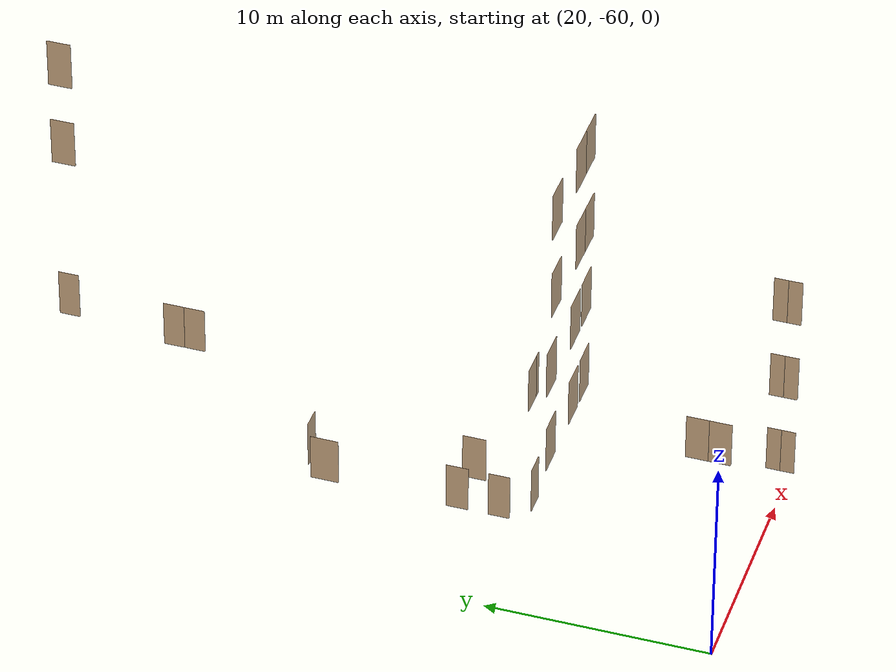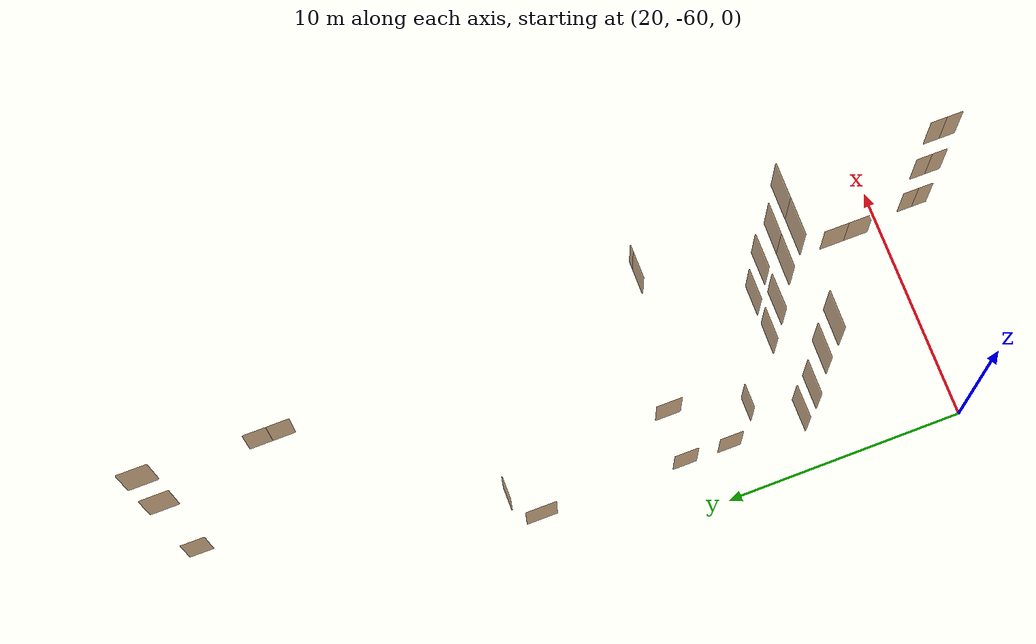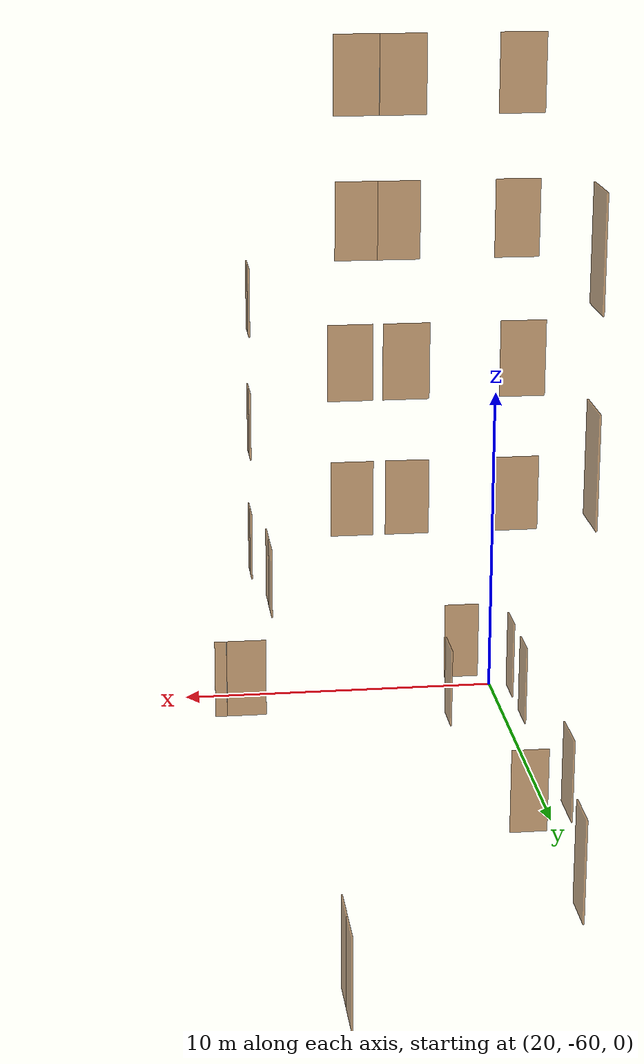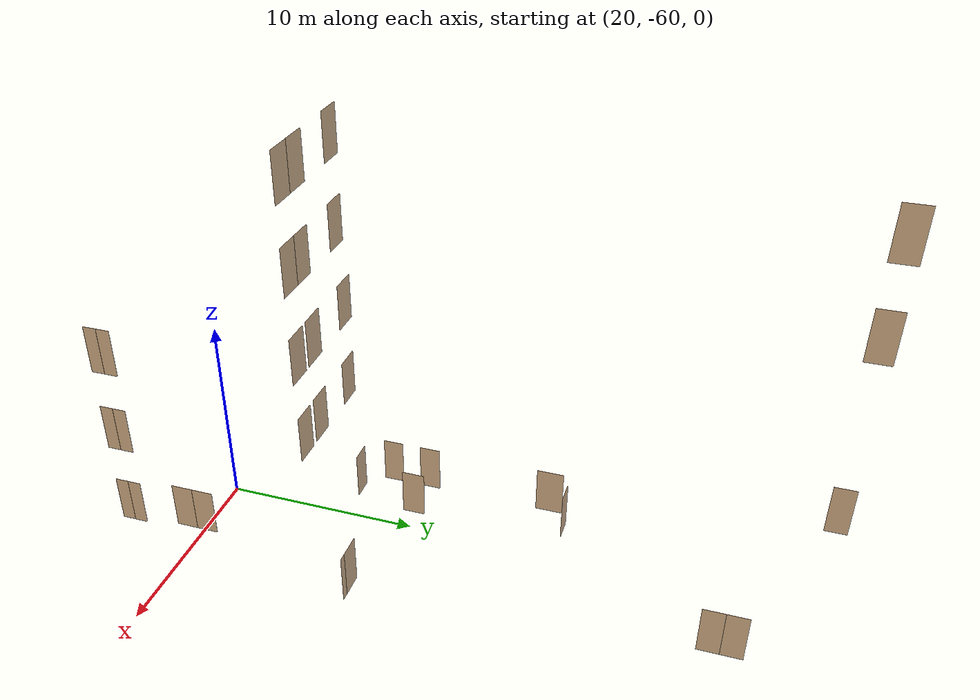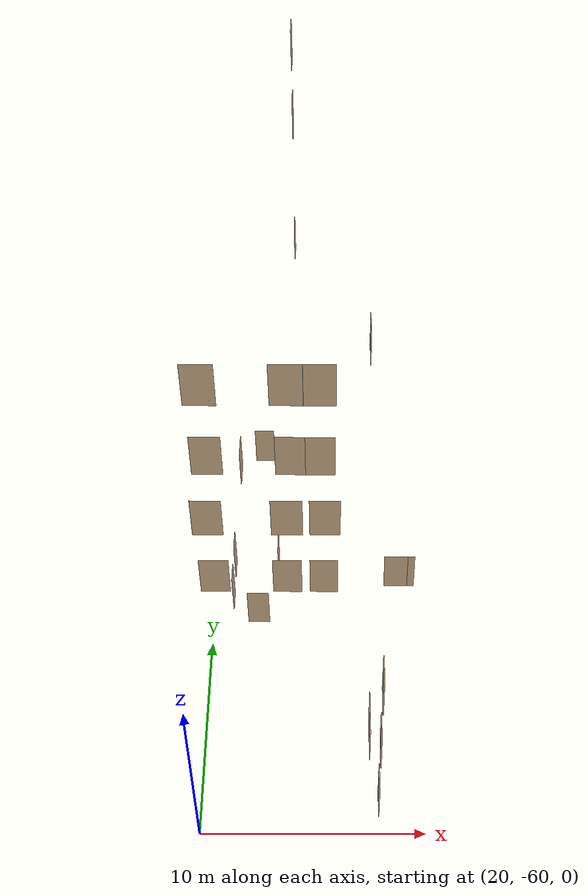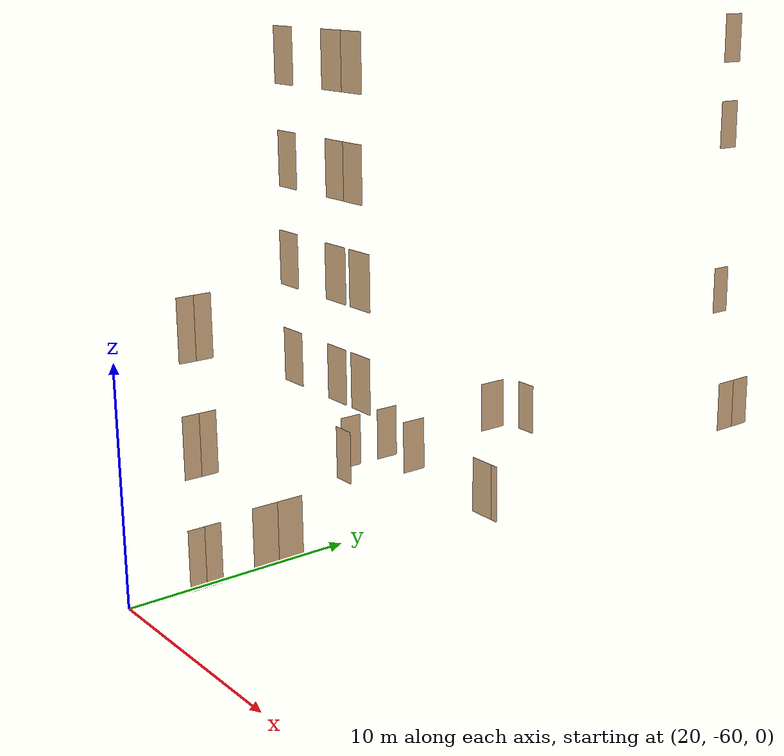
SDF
<sdf version="1.7">
 <world name="sim_world">
  <model name="0null19">
   <pose>27.81230631370644 -60.652111413956575 4.0 0 0 1.5707963267948966</pose>
   <link name="right">
    <pose>0.3098140611581979 0 1.11 0 0 0</pose>
    <visual name="right_visual">
     <geometry><box><size>0.6096281223163957 0.03 2.2</size></box></geometry>
     <material>
      <ambient>0.5 0.25 0 0.6</ambient>
      <diffuse>0.5 0.25 0 0.6</diffuse>
      <pbr><metal><metalness>0.0</metalness></metal></pbr>
     </material>
    </visual>
    <collision name="right_collision">
     <geometry><box><size>0.6096281223163957 0.03 2.2</size></box></geometry>
     <surface><contact><collide_bitmask>0x02</collide_bitmask></contact></surface>
    </collision>
    <inertial>
     <mass>50.0</mass>
     <inertia><ixx>20.17041666666667</ixx><iyy>21.71519353132923</iyy><izz>1.55227686466256</izz></inertia>
    </inertial>
   </link>
   <joint name="right_joint" type="prismatic">
    <parent>world</parent>
    <child>right</child>
    <axis>
     <xyz>1 0 0</xyz>
     <limit><lower>0.0</lower><upper>0.6196281223163957</upper><effort>500.0</effort></limit>
    </axis>
   </joint>
   <link name="left">
    <pose>-0.3098140611581979 0 1.11 0 0 0</pose>
    <visual name="left_visual">
     <geometry><box><size>0.6096281223163957 0.03 2.2</size></box></geometry>
     <material>
      <ambient>0.5 0.25 0 0.6</ambient>
      <diffuse>0.5 0.25 0 0.6</diffuse>
      <pbr><metal><metalness>0.0</metalness></metal></pbr>
     </material>
    </visual>
    <collision name="left_collision">
     <geometry><box><size>0.6096281223163957 0.03 2.2</size></box></geometry>
     <surface><contact><collide_bitmask>0x02</collide_bitmask></contact></surface>
    </collision>
    <inertial>
     <mass>50.0</mass>
     <inertia><ixx>20.17041666666667</ixx><iyy>21.71519353132923</iyy><izz>1.55227686466256</izz></inertia>
    </inertial>
   </link>
   <joint name="left_joint" type="prismatic">
    <parent>world</parent>
    <child>left</child>
    <axis>
     <xyz>1 0 0</xyz>
     <limit><lower>-0.6196281223163957</lower><upper>0.0</upper><effort>500.0</effort></limit>
    </axis>
   </joint>
   <plugin name="register_component" filename="libregister_component.so">
    <component name="Door">
     <v_max_door>0.2</v_max_door>
     <a_max_door>0.2</a_max_door>
     <a_nom_door>0.08</a_nom_door>
     <dx_min_door>0.001</dx_min_door>
     <f_max_door>100.0</f_max_door>
     <ros_interface>true</ros_interface>
     <door name="0null19" type="DoubleSlidingDoor" left_joint_name="left_joint" right_joint_name="right_joint"/>
    </component>
   </plugin>
  </model>
  <model name="0null34">
   <pose>27.865829070679144 -33.85503864391589 4.0 0 0 1.5718024222120746</pose>
   <link name="right">
    <pose>0.47316418675498717 0 1.11 0 0 0</pose>
    <visual name="right_visual">
     <geometry><box><size>0.9363283735099743 0.03 2.2</size></box></geometry>
     <material>
      <ambient>0.5 0.25 0 0.6</ambient>
      <diffuse>0.5 0.25 0 0.6</diffuse>
      <pbr><metal><metalness>0.0</metalness></metal></pbr>
     </material>
    </visual>
    <collision name="right_collision">
     <geometry><box><size>0.9363283735099743 0.03 2.2</size></box></geometry>
     <surface><contact><collide_bitmask>0x02</collide_bitmask></contact></surface>
    </collision>
    <inertial>
     <mass>50.0</mass>
     <inertia><ixx>20.17041666666667</ixx><iyy>23.819628429332646</iyy><izz>3.6567117626659758</izz></inertia>
    </inertial>
   </link>
   <joint name="right_joint" type="revolute">
    <parent>world</parent>
    <child>right</child>
    <axis><xyz>0 0 1</xyz><limit><lower>0</lower><upper>1.57</upper></limit></axis>
    <pose>0.47316418675498717 0 0 0 0 0</pose>
   </joint>
   <link name="left">
    <pose>-0.47316418675498717 0 1.11 0 0 0</pose>
    <visual name="left_visual">
     <geometry><box><size>0.9363283735099743 0.03 2.2</size></box></geometry>
     <material>
      <ambient>0.5 0.25 0 0.6</ambient>
      <diffuse>0.5 0.25 0 0.6</diffuse>
      <pbr><metal><metalness>0.0</metalness></metal></pbr>
     </material>
    </visual>
    <collision name="left_collision">
     <geometry><box><size>0.9363283735099743 0.03 2.2</size></box></geometry>
     <surface><contact><collide_bitmask>0x02</collide_bitmask></contact></surface>
    </collision>
    <inertial>
     <mass>50.0</mass>
     <inertia><ixx>20.17041666666667</ixx><iyy>23.819628429332646</iyy><izz>3.6567117626659758</izz></inertia>
    </inertial>
   </link>
   <joint name="left_joint" type="revolute">
    <parent>world</parent>
    <child>left</child>
    <axis><xyz>0 0 1</xyz><limit><lower>-1.57</lower><upper>0</upper></limit></axis>
    <pose>-0.47316418675498717 0 0 0 0 0</pose>
   </joint>
   <plugin name="register_component" filename="libregister_component.so">
    <component name="Door">
     <v_max_door>0.5</v_max_door>
     <a_max_door>0.3</a_max_door>
     <a_nom_door>0.15</a_nom_door>
     <dx_min_door>0.01</dx_min_door>
     <f_max_door>500.0</f_max_door>
     <ros_interface>true</ros_interface>
     <door name="0null34" type="DoubleSwingDoor" left_joint_name="left_joint" right_joint_name="right_joint"/>
    </component>
   </plugin>
  </model>
  <model name="0null35">
   <pose>22.43615353022438 -41.5524773177015 4.0 0 0 0.0</pose>
   <link name="right">
    <pose>0 0 1.11 0 0 0</pose>
    <visual name="right_visual">
     <geometry><box><size>0.9322768173841618 0.03 2.2</size></box></geometry>
     <material>
      <ambient>0.5 0.25 0 0.6</ambient>
      <diffuse>0.5 0.25 0 0.6</diffuse>
      <pbr><metal><metalness>0.0</metalness></metal></pbr>
     </material>
    </visual>
    <collision name="right_collision">
     <geometry><box><size>0.9322768173841618 0.03 2.2</size></box></geometry>
     <surface><contact><collide_bitmask>0x02</collide_bitmask></contact></surface>
    </collision>
    <inertial>
     <mass>50.0</mass>
     <inertia><ixx>20.17041666666667</ixx><iyy>23.788083600966427</iyy><izz>3.6251669342997577</izz></inertia>
    </inertial>
   </link>
   <joint name="right_joint" type="revolute">
    <parent>world</parent>
    <child>right</child>
    <axis><xyz>0 0 1</xyz><limit><lower>0</lower><upper>1.57</upper></limit></axis>
    <pose>0.4711384086920809 0 0 0 0 0</pose>
   </joint>
   <plugin name="register_component" filename="libregister_component.so">
    <component name="Door">
     <v_max_door>0.5</v_max_door>
     <a_max_door>0.3</a_max_door>
     <a_nom_door>0.15</a_nom_door>
     <dx_min_door>0.01</dx_min_door>
     <f_max_door>500.0</f_max_door>
     <ros_interface>true</ros_interface>
     <door name="0null35" type="SwingDoor" left_joint_name="empty_joint" right_joint_name="right_joint"/>
    </component>
   </plugin>
  </model>
  <model name="0null36">
   <pose>21.264962849568743 -42.520535414255285 4.0 0 0 -1.5739242024412845</pose>
   <link name="right">
    <pose>0 0 1.11 0 0 0</pose>
    <visual name="right_visual">
     <geometry><box><size>1.2433758060562836 0.03 2.2</size></box></geometry>
     <material>
      <ambient>0.5 0.25 0 0.6</ambient>
      <diffuse>0.5 0.25 0 0.6</diffuse>
      <pbr><metal><metalness>0.0</metalness></metal></pbr>
     </material>
    </visual>
    <collision name="right_collision">
     <geometry><box><size>1.2433758060562836 0.03 2.2</size></box></geometry>
     <surface><contact><collide_bitmask>0x02</collide_bitmask></contact></surface>
    </collision>
    <inertial>
     <mass>50.0</mass>
     <inertia><ixx>20.17041666666667</ixx><iyy>26.60826414619214</iyy><izz>6.445347479525471</izz></inertia>
    </inertial>
   </link>
   <joint name="right_joint" type="revolute">
    <parent>world</parent>
    <child>right</child>
    <axis><xyz>0 0 1</xyz><limit><lower>0</lower><upper>1.57</upper></limit></axis>
    <pose>0.6266879030281418 0 0 0 0 0</pose>
   </joint>
   <plugin name="register_component" filename="libregister_component.so">
    <component name="Door">
     <v_max_door>0.5</v_max_door>
     <a_max_door>0.3</a_max_door>
     <a_nom_door>0.15</a_nom_door>
     <dx_min_door>0.01</dx_min_door>
     <f_max_door>500.0</f_max_door>
     <ros_interface>true</ros_interface>
     <door name="0null36" type="SwingDoor" left_joint_name="empty_joint" right_joint_name="right_joint"/>
    </component>
   </plugin>
  </model>
  <model name="0null37">
   <pose>21.267333756487307 -48.400533920770606 4.0 0 0 -1.5707963267948966</pose>
   <link name="right">
    <pose>0 0 1.11 0 0 0</pose>
    <visual name="right_visual">
     <geometry><box><size>0.9699126311466182 0.03 2.2</size></box></geometry>
     <material>
      <ambient>0.5 0.25 0 0.6</ambient>
      <diffuse>0.5 0.25 0 0.6</diffuse>
      <pbr><metal><metalness>0.0</metalness></metal></pbr>
     </material>
    </visual>
    <collision name="right_collision">
     <geometry><box><size>0.9699126311466182 0.03 2.2</size></box></geometry>
     <surface><contact><collide_bitmask>0x02</collide_bitmask></contact></surface>
    </collision>
    <inertial>
     <mass>50.0</mass>
     <inertia><ixx>20.17041666666667</ixx><iyy>24.086377133573986</iyy><izz>3.9234604669073163</izz></inertia>
    </inertial>
   </link>
   <joint name="right_joint" type="revolute">
    <parent>world</parent>
    <child>right</child>
    <axis><xyz>0 0 1</xyz><limit><lower>0</lower><upper>1.57</upper></limit></axis>
    <pose>0.4899563155733091 0 0 0 0 0</pose>
   </joint>
   <plugin name="register_component" filename="libregister_component.so">
    <component name="Door">
     <v_max_door>0.5</v_max_door>
     <a_max_door>0.3</a_max_door>
     <a_nom_door>0.15</a_nom_door>
     <dx_min_door>0.01</dx_min_door>
     <f_max_door>500.0</f_max_door>
     <ros_interface>true</ros_interface>
     <door name="0null37" type="SwingDoor" left_joint_name="empty_joint" right_joint_name="right_joint"/>
    </component>
   </plugin>
  </model>
  <model name="0null38">
   <pose>23.314079826755766 -48.501325467647355 4.0 0 0 -1.5707963267948966</pose>
   <link name="right">
    <pose>0 0 1.11 0 0 0</pose>
    <visual name="right_visual">
     <geometry><box><size>1.0411891871709622 0.03 2.2</size></box></geometry>
     <material>
      <ambient>0.5 0.25 0 0.6</ambient>
      <diffuse>0.5 0.25 0 0.6</diffuse>
      <pbr><metal><metalness>0.0</metalness></metal></pbr>
     </material>
    </visual>
    <collision name="right_collision">
     <geometry><box><size>1.0411891871709622 0.03 2.2</size></box></geometry>
     <surface><contact><collide_bitmask>0x02</collide_bitmask></contact></surface>
    </collision>
    <inertial>
     <mass>50.0</mass>
     <inertia><ixx>20.17041666666667</ixx><iyy>24.68364551450721</iyy><izz>4.520728847840537</izz></inertia>
    </inertial>
   </link>
   <joint name="right_joint" type="revolute">
    <parent>world</parent>
    <child>right</child>
    <axis><xyz>0 0 -1</xyz><limit><lower>0</lower><upper>1.57</upper></limit></axis>
    <pose>0.5255945935854811 0 0 0 0 0</pose>
   </joint>
   <plugin name="register_component" filename="libregister_component.so">
    <component name="Door">
     <v_max_door>0.5</v_max_door>
     <a_max_door>0.3</a_max_door>
     <a_nom_door>0.15</a_nom_door>
     <dx_min_door>0.01</dx_min_door>
     <f_max_door>500.0</f_max_door>
     <ros_interface>true</ros_interface>
     <door name="0null38" type="SwingDoor" left_joint_name="empty_joint" right_joint_name="right_joint"/>
    </component>
   </plugin>
  </model>
  <model name="0null39">
   <pose>21.267333756487307 -50.24157114587608 4.0 0 0 1.5707963267948966</pose>
   <link name="right">
    <pose>0 0 1.11 0 0 0</pose>
    <visual name="right_visual">
     <geometry><box><size>0.9402296232684912 0.03 2.2</size></box></geometry>
     <material>
      <ambient>0.5 0.25 0 0.6</ambient>
      <diffuse>0.5 0.25 0 0.6</diffuse>
      <pbr><metal><metalness>0.0</metalness></metal></pbr>
     </material>
    </visual>
    <collision name="right_collision">
     <geometry><box><size>0.9402296232684912 0.03 2.2</size></box></geometry>
     <surface><contact><collide_bitmask>0x02</collide_bitmask></contact></surface>
    </collision>
    <inertial>
     <mass>50.0</mass>
     <inertia><ixx>20.17041666666667</ixx><iyy>23.850132268631707</iyy><izz>3.6872156019650375</izz></inertia>
    </inertial>
   </link>
   <joint name="right_joint" type="revolute">
    <parent>world</parent>
    <child>right</child>
    <axis><xyz>0 0 -1</xyz><limit><lower>0</lower><upper>1.57</upper></limit></axis>
    <pose>0.4751148116342456 0 0 0 0 0</pose>
   </joint>
   <plugin name="register_component" filename="libregister_component.so">
    <component name="Door">
     <v_max_door>0.5</v_max_door>
     <a_max_door>0.3</a_max_door>
     <a_nom_door>0.15</a_nom_door>
     <dx_min_door>0.01</dx_min_door>
     <f_max_door>500.0</f_max_door>
     <ros_interface>true</ros_interface>
     <door name="0null39" type="SwingDoor" left_joint_name="empty_joint" right_joint_name="right_joint"/>
    </component>
   </plugin>
  </model>
  <model name="0null40">
   <pose>22.471119740133652 -51.43594817608181 4.0 0 0 3.141592653589793</pose>
   <link name="right">
    <pose>0 0 1.11 0 0 0</pose>
    <visual name="right_visual">
     <geometry><box><size>0.973310308777952 0.03 2.2</size></box></geometry>
     <material>
      <ambient>0.5 0.25 0 0.6</ambient>
      <diffuse>0.5 0.25 0 0.6</diffuse>
      <pbr><metal><metalness>0.0</metalness></metal></pbr>
     </material>
    </visual>
    <collision name="right_collision">
     <geometry><box><size>0.973310308777952 0.03 2.2</size></box></geometry>
     <surface><contact><collide_bitmask>0x02</collide_bitmask></contact></surface>
    </collision>
    <inertial>
     <mass>50.0</mass>
     <inertia><ixx>20.17041666666667</ixx><iyy>24.11388732155597</iyy><izz>3.9509706548893013</izz></inertia>
    </inertial>
   </link>
   <joint name="right_joint" type="revolute">
    <parent>world</parent>
    <child>right</child>
    <axis><xyz>0 0 -1</xyz><limit><lower>0</lower><upper>1.57</upper></limit></axis>
    <pose>0.491655154388976 0 0 0 0 0</pose>
   </joint>
   <plugin name="register_component" filename="libregister_component.so">
    <component name="Door">
     <v_max_door>0.5</v_max_door>
     <a_max_door>0.3</a_max_door>
     <a_nom_door>0.15</a_nom_door>
     <dx_min_door>0.01</dx_min_door>
     <f_max_door>500.0</f_max_door>
     <ros_interface>true</ros_interface>
     <door name="0null40" type="SwingDoor" left_joint_name="empty_joint" right_joint_name="right_joint"/>
    </component>
   </plugin>
  </model>
  <model name="0null41">
   <pose>28.96070268453868 -49.36437292312284 4.0 0 0 0.0</pose>
   <link name="right">
    <pose>0.5437863857383691 0 1.11 0 0 0</pose>
    <visual name="right_visual">
     <geometry><box><size>0.3162718314430214 0.03 2.2</size></box></geometry>
     <material>
      <ambient>0.5 0.25 0 0.6</ambient>
      <diffuse>0.5 0.25 0 0.6</diffuse>
      <pbr><metal><metalness>0.0</metalness></metal></pbr>
     </material>
    </visual>
    <collision name="right_collision">
     <geometry><box><size>0.3162718314430214 0.03 2.2</size></box></geometry>
     <surface><contact><collide_bitmask>0x02</collide_bitmask></contact></surface>
    </collision>
    <inertial>
     <mass>50.0</mass>
     <inertia><ixx>20.17041666666667</ixx><iyy>20.583449464018017</iyy><izz>0.4205327973513456</izz></inertia>
    </inertial>
   </link>
   <joint name="right_joint" type="revolute">
    <parent>world</parent>
    <child>right</child>
    <axis><xyz>0 0 -1</xyz><limit><lower>0</lower><upper>1.57</upper></limit></axis>
    <pose>0.1631359157215107 0 0 0 0 0</pose>
   </joint>
   <link name="left">
    <pose>-0.16313591572151065 0 1.11 0 0 0</pose>
    <visual name="left_visual">
     <geometry><box><size>1.0775727714767382 0.03 2.2</size></box></geometry>
     <material>
      <ambient>0.5 0.25 0 0.6</ambient>
      <diffuse>0.5 0.25 0 0.6</diffuse>
      <pbr><metal><metalness>0.0</metalness></metal></pbr>
     </material>
    </visual>
    <collision name="left_collision">
     <geometry><box><size>1.0775727714767382 0.03 2.2</size></box></geometry>
     <surface><contact><collide_bitmask>0x02</collide_bitmask></contact></surface>
    </collision>
    <inertial>
     <mass>50.0</mass>
     <inertia><ixx>20.17041666666667</ixx><iyy>25.004846157616917</iyy><izz>4.841929490950245</izz></inertia>
    </inertial>
   </link>
   <joint name="left_joint" type="revolute">
    <parent>world</parent>
    <child>left</child>
    <axis><xyz>0 0 -1</xyz><limit><lower>-1.57</lower><upper>0</upper></limit></axis>
    <pose>-0.5437863857383691 0 0 0 0 0</pose>
   </joint>
   <plugin name="register_component" filename="libregister_component.so">
    <component name="Door">
     <v_max_door>0.5</v_max_door>
     <a_max_door>0.3</a_max_door>
     <a_nom_door>0.15</a_nom_door>
     <dx_min_door>0.01</dx_min_door>
     <f_max_door>500.0</f_max_door>
     <ros_interface>true</ros_interface>
     <door name="0null41" type="DoubleSwingDoor" left_joint_name="left_joint" right_joint_name="right_joint"/>
    </component>
   </plugin>
  </model>
  <model name="0null50">
   <pose>27.46846880483887 -57.59207333009741 4.0 0 0 1.5707963267948966</pose>
   <link name="right">
    <pose>0.5057032445954519 0 1.11 0 0 0</pose>
    <visual name="right_visual">
     <geometry><box><size>1.0014064891909038 0.03 2.2</size></box></geometry>
     <material>
      <ambient>0.5 0.25 0 0.6</ambient>
      <diffuse>0.5 0.25 0 0.6</diffuse>
      <pbr><metal><metalness>0.0</metalness></metal></pbr>
     </material>
    </visual>
    <collision name="right_collision">
     <geometry><box><size>1.0014064891909038 0.03 2.2</size></box></geometry>
     <surface><contact><collide_bitmask>0x02</collide_bitmask></contact></surface>
    </collision>
    <inertial>
     <mass>50.0</mass>
     <inertia><ixx>20.17041666666667</ixx><iyy>24.345062319140222</iyy><izz>4.182145652473548</izz></inertia>
    </inertial>
   </link>
   <joint name="right_joint" type="revolute">
    <parent>world</parent>
    <child>right</child>
    <axis><xyz>0 0 -1</xyz><limit><lower>0</lower><upper>1.57</upper></limit></axis>
    <pose>0.5057032445954519 0 0 0 0 0</pose>
   </joint>
   <link name="left">
    <pose>-0.5057032445954519 0 1.11 0 0 0</pose>
    <visual name="left_visual">
     <geometry><box><size>1.0014064891909038 0.03 2.2</size></box></geometry>
     <material>
      <ambient>0.5 0.25 0 0.6</ambient>
      <diffuse>0.5 0.25 0 0.6</diffuse>
      <pbr><metal><metalness>0.0</metalness></metal></pbr>
     </material>
    </visual>
    <collision name="left_collision">
     <geometry><box><size>1.0014064891909038 0.03 2.2</size></box></geometry>
     <surface><contact><collide_bitmask>0x02</collide_bitmask></contact></surface>
    </collision>
    <inertial>
     <mass>50.0</mass>
     <inertia><ixx>20.17041666666667</ixx><iyy>24.345062319140222</iyy><izz>4.182145652473548</izz></inertia>
    </inertial>
   </link>
   <joint name="left_joint" type="revolute">
    <parent>world</parent>
    <child>left</child>
    <axis><xyz>0 0 -1</xyz><limit><lower>-1.57</lower><upper>0</upper></limit></axis>
    <pose>-0.5057032445954519 0 0 0 0 0</pose>
   </joint>
   <plugin name="register_component" filename="libregister_component.so">
    <component name="Door">
     <v_max_door>0.5</v_max_door>
     <a_max_door>0.3</a_max_door>
     <a_nom_door>0.15</a_nom_door>
     <dx_min_door>0.01</dx_min_door>
     <f_max_door>500.0</f_max_door>
     <ros_interface>true</ros_interface>
     <door name="0null50" type="DoubleSwingDoor" left_joint_name="left_joint" right_joint_name="right_joint"/>
    </component>
   </plugin>
  </model>
  <model name="1null19">
   <pose>27.81230631370644 -60.652111413956575 8.0 0 0 1.5707963267948966</pose>
   <link name="right">
    <pose>0.3098140611581979 0 1.11 0 0 0</pose>
    <visual name="right_visual">
     <geometry><box><size>0.6096281223163957 0.03 2.2</size></box></geometry>
     <material>
      <ambient>0.5 0.25 0 0.6</ambient>
      <diffuse>0.5 0.25 0 0.6</diffuse>
      <pbr><metal><metalness>0.0</metalness></metal></pbr>
     </material>
    </visual>
    <collision name="right_collision">
     <geometry><box><size>0.6096281223163957 0.03 2.2</size></box></geometry>
     <surface><contact><collide_bitmask>0x02</collide_bitmask></contact></surface>
    </collision>
    <inertial>
     <mass>50.0</mass>
     <inertia><ixx>20.17041666666667</ixx><iyy>21.71519353132923</iyy><izz>1.55227686466256</izz></inertia>
    </inertial>
   </link>
   <joint name="right_joint" type="prismatic">
    <parent>world</parent>
    <child>right</child>
    <axis>
     <xyz>1 0 0</xyz>
     <limit><lower>0.0</lower><upper>0.6196281223163957</upper><effort>500.0</effort></limit>
    </axis>
   </joint>
   <link name="left">
    <pose>-0.3098140611581979 0 1.11 0 0 0</pose>
    <visual name="left_visual">
     <geometry><box><size>0.6096281223163957 0.03 2.2</size></box></geometry>
     <material>
      <ambient>0.5 0.25 0 0.6</ambient>
      <diffuse>0.5 0.25 0 0.6</diffuse>
      <pbr><metal><metalness>0.0</metalness></metal></pbr>
     </material>
    </visual>
    <collision name="left_collision">
     <geometry><box><size>0.6096281223163957 0.03 2.2</size></box></geometry>
     <surface><contact><collide_bitmask>0x02</collide_bitmask></contact></surface>
    </collision>
    <inertial>
     <mass>50.0</mass>
     <inertia><ixx>20.17041666666667</ixx><iyy>21.71519353132923</iyy><izz>1.55227686466256</izz></inertia>
    </inertial>
   </link>
   <joint name="left_joint" type="prismatic">
    <parent>world</parent>
    <child>left</child>
    <axis>
     <xyz>1 0 0</xyz>
     <limit><lower>-0.6196281223163957</lower><upper>0.0</upper><effort>500.0</effort></limit>
    </axis>
   </joint>
   <plugin name="register_component" filename="libregister_component.so">
    <component name="Door">
     <v_max_door>0.2</v_max_door>
     <a_max_door>0.2</a_max_door>
     <a_nom_door>0.08</a_nom_door>
     <dx_min_door>0.001</dx_min_door>
     <f_max_door>100.0</f_max_door>
     <ros_interface>true</ros_interface>
     <door name="1null19" type="DoubleSlidingDoor" left_joint_name="left_joint" right_joint_name="right_joint"/>
    </component>
   </plugin>
  </model>
  <model name="1null89">
   <pose>23.786189000485365 -30.238901542022905 8.0 0 0 -1.5768788298289724</pose>
   <link name="right">
    <pose>0 0 1.11 0 0 0</pose>
    <visual name="right_visual">
     <geometry><box><size>0.916911071589999 0.03 2.2</size></box></geometry>
     <material>
      <ambient>0.5 0.25 0 0.6</ambient>
      <diffuse>0.5 0.25 0 0.6</diffuse>
      <pbr><metal><metalness>0.0</metalness></metal></pbr>
     </material>
    </visual>
    <collision name="right_collision">
     <geometry><box><size>0.916911071589999 0.03 2.2</size></box></geometry>
     <surface><contact><collide_bitmask>0x02</collide_bitmask></contact></surface>
    </collision>
    <inertial>
     <mass>50.0</mass>
     <inertia><ixx>20.17041666666667</ixx><iyy>23.669691305018006</iyy><izz>3.5067746383513345</izz></inertia>
    </inertial>
   </link>
   <joint name="right_joint" type="revolute">
    <parent>world</parent>
    <child>right</child>
    <axis><xyz>0 0 1</xyz><limit><lower>0</lower><upper>1.57</upper></limit></axis>
    <pose>0.4634555357949995 0 0 0 0 0</pose>
   </joint>
   <plugin name="register_component" filename="libregister_component.so">
    <component name="Door">
     <v_max_door>0.5</v_max_door>
     <a_max_door>0.3</a_max_door>
     <a_nom_door>0.15</a_nom_door>
     <dx_min_door>0.01</dx_min_door>
     <f_max_door>500.0</f_max_door>
     <ros_interface>true</ros_interface>
     <door name="1null89" type="SwingDoor" left_joint_name="empty_joint" right_joint_name="right_joint"/>
    </component>
   </plugin>
  </model>
  <model name="1null90">
   <pose>20.760557069783058 -52.60523466377923 8.0 0 0 0.00693109677061986</pose>
   <link name="right">
    <pose>0 0 1.11 0 0 0</pose>
    <visual name="right_visual">
     <geometry><box><size>1.2828660618654428 0.03 2.2</size></box></geometry>
     <material>
      <ambient>0.5 0.25 0 0.6</ambient>
      <diffuse>0.5 0.25 0 0.6</diffuse>
      <pbr><metal><metalness>0.0</metalness></metal></pbr>
     </material>
    </visual>
    <collision name="right_collision">
     <geometry><box><size>1.2828660618654428 0.03 2.2</size></box></geometry>
     <surface><contact><collide_bitmask>0x02</collide_bitmask></contact></surface>
    </collision>
    <inertial>
     <mass>50.0</mass>
     <inertia><ixx>20.17041666666667</ixx><iyy>27.023938886192298</iyy><izz>6.861022219525626</izz></inertia>
    </inertial>
   </link>
   <joint name="right_joint" type="revolute">
    <parent>world</parent>
    <child>right</child>
    <axis><xyz>0 0 1</xyz><limit><lower>0</lower><upper>1.57</upper></limit></axis>
    <pose>0.6464330309327214 0 0 0 0 0</pose>
   </joint>
   <plugin name="register_component" filename="libregister_component.so">
    <component name="Door">
     <v_max_door>0.5</v_max_door>
     <a_max_door>0.3</a_max_door>
     <a_nom_door>0.15</a_nom_door>
     <dx_min_door>0.01</dx_min_door>
     <f_max_door>500.0</f_max_door>
     <ros_interface>true</ros_interface>
     <door name="1null90" type="SwingDoor" left_joint_name="empty_joint" right_joint_name="right_joint"/>
    </component>
   </plugin>
  </model>
  <model name="1null91">
   <pose>23.911884404286287 -52.61421424037633 8.0 0 0 -0.007158860591732132</pose>
   <link name="right">
    <pose>0 0 1.11 0 0 0</pose>
    <visual name="right_visual">
     <geometry><box><size>1.2469489096212298 0.03 2.2</size></box></geometry>
     <material>
      <ambient>0.5 0.25 0 0.6</ambient>
      <diffuse>0.5 0.25 0 0.6</diffuse>
      <pbr><metal><metalness>0.0</metalness></metal></pbr>
     </material>
    </visual>
    <collision name="right_collision">
     <geometry><box><size>1.2469489096212298 0.03 2.2</size></box></geometry>
     <surface><contact><collide_bitmask>0x02</collide_bitmask></contact></surface>
    </collision>
    <inertial>
     <mass>50.0</mass>
     <inertia><ixx>20.17041666666667</ixx><iyy>26.64533993002323</iyy><izz>6.482423263356559</izz></inertia>
    </inertial>
   </link>
   <joint name="right_joint" type="revolute">
    <parent>world</parent>
    <child>right</child>
    <axis><xyz>0 0 1</xyz><limit><lower>0</lower><upper>1.57</upper></limit></axis>
    <pose>0.6284744548106149 0 0 0 0 0</pose>
   </joint>
   <plugin name="register_component" filename="libregister_component.so">
    <component name="Door">
     <v_max_door>0.5</v_max_door>
     <a_max_door>0.3</a_max_door>
     <a_nom_door>0.15</a_nom_door>
     <dx_min_door>0.01</dx_min_door>
     <f_max_door>500.0</f_max_door>
     <ros_interface>true</ros_interface>
     <door name="1null91" type="SwingDoor" left_joint_name="empty_joint" right_joint_name="right_joint"/>
    </component>
   </plugin>
  </model>
  <model name="1null92">
   <pose>25.49583691147368 -52.61425157749315 8.0 0 0 3.1377169405739256</pose>
   <link name="right">
    <pose>0 0 1.11 0 0 0</pose>
    <visual name="right_visual">
     <geometry><box><size>1.2134718331809198 0.03 2.2</size></box></geometry>
     <material>
      <ambient>0.5 0.25 0 0.6</ambient>
      <diffuse>0.5 0.25 0 0.6</diffuse>
      <pbr><metal><metalness>0.0</metalness></metal></pbr>
     </material>
    </visual>
    <collision name="right_collision">
     <geometry><box><size>1.2134718331809198 0.03 2.2</size></box></geometry>
     <surface><contact><collide_bitmask>0x02</collide_bitmask></contact></surface>
    </collision>
    <inertial>
     <mass>50.0</mass>
     <inertia><ixx>20.17041666666667</ixx><iyy>26.30214120801443</iyy><izz>6.139224541347758</izz></inertia>
    </inertial>
   </link>
   <joint name="right_joint" type="revolute">
    <parent>world</parent>
    <child>right</child>
    <axis><xyz>0 0 -1</xyz><limit><lower>0</lower><upper>1.57</upper></limit></axis>
    <pose>0.6117359165904599 0 0 0 0 0</pose>
   </joint>
   <plugin name="register_component" filename="libregister_component.so">
    <component name="Door">
     <v_max_door>0.5</v_max_door>
     <a_max_door>0.3</a_max_door>
     <a_nom_door>0.15</a_nom_door>
     <dx_min_door>0.01</dx_min_door>
     <f_max_door>500.0</f_max_door>
     <ros_interface>true</ros_interface>
     <door name="1null92" type="SwingDoor" left_joint_name="empty_joint" right_joint_name="right_joint"/>
    </component>
   </plugin>
  </model>
  <model name="2null19">
   <pose>27.81230631370644 -60.652111413956575 12.0 0 0 1.5707963267948966</pose>
   <link name="right">
    <pose>0.3098140611581979 0 1.11 0 0 0</pose>
    <visual name="right_visual">
     <geometry><box><size>0.6096281223163957 0.03 2.2</size></box></geometry>
     <material>
      <ambient>0.5 0.25 0 0.6</ambient>
      <diffuse>0.5 0.25 0 0.6</diffuse>
      <pbr><metal><metalness>0.0</metalness></metal></pbr>
     </material>
    </visual>
    <collision name="right_collision">
     <geometry><box><size>0.6096281223163957 0.03 2.2</size></box></geometry>
     <surface><contact><collide_bitmask>0x02</collide_bitmask></contact></surface>
    </collision>
    <inertial>
     <mass>50.0</mass>
     <inertia><ixx>20.17041666666667</ixx><iyy>21.71519353132923</iyy><izz>1.55227686466256</izz></inertia>
    </inertial>
   </link>
   <joint name="right_joint" type="prismatic">
    <parent>world</parent>
    <child>right</child>
    <axis>
     <xyz>1 0 0</xyz>
     <limit><lower>0.0</lower><upper>0.6196281223163957</upper><effort>500.0</effort></limit>
    </axis>
   </joint>
   <link name="left">
    <pose>-0.3098140611581979 0 1.11 0 0 0</pose>
    <visual name="left_visual">
     <geometry><box><size>0.6096281223163957 0.03 2.2</size></box></geometry>
     <material>
      <ambient>0.5 0.25 0 0.6</ambient>
      <diffuse>0.5 0.25 0 0.6</diffuse>
      <pbr><metal><metalness>0.0</metalness></metal></pbr>
     </material>
    </visual>
    <collision name="left_collision">
     <geometry><box><size>0.6096281223163957 0.03 2.2</size></box></geometry>
     <surface><contact><collide_bitmask>0x02</collide_bitmask></contact></surface>
    </collision>
    <inertial>
     <mass>50.0</mass>
     <inertia><ixx>20.17041666666667</ixx><iyy>21.71519353132923</iyy><izz>1.55227686466256</izz></inertia>
    </inertial>
   </link>
   <joint name="left_joint" type="prismatic">
    <parent>world</parent>
    <child>left</child>
    <axis>
     <xyz>1 0 0</xyz>
     <limit><lower>-0.6196281223163957</lower><upper>0.0</upper><effort>500.0</effort></limit>
    </axis>
   </joint>
   <plugin name="register_component" filename="libregister_component.so">
    <component name="Door">
     <v_max_door>0.2</v_max_door>
     <a_max_door>0.2</a_max_door>
     <a_nom_door>0.08</a_nom_door>
     <dx_min_door>0.001</dx_min_door>
     <f_max_door>100.0</f_max_door>
     <ros_interface>true</ros_interface>
     <door name="2null19" type="DoubleSlidingDoor" left_joint_name="left_joint" right_joint_name="right_joint"/>
    </component>
   </plugin>
  </model>
  <model name="2null83">
   <pose>20.65758130157188 -52.61598775342564 12.0 0 0 -0.004238961835888068</pose>
   <link name="right">
    <pose>0 0 1.11 0 0 0</pose>
    <visual name="right_visual">
     <geometry><box><size>1.2935998089700753 0.03 2.2</size></box></geometry>
     <material>
      <ambient>0.5 0.25 0 0.6</ambient>
      <diffuse>0.5 0.25 0 0.6</diffuse>
      <pbr><metal><metalness>0.0</metalness></metal></pbr>
     </material>
    </visual>
    <collision name="right_collision">
     <geometry><box><size>1.2935998089700753 0.03 2.2</size></box></geometry>
     <surface><contact><collide_bitmask>0x02</collide_bitmask></contact></surface>
    </collision>
    <inertial>
     <mass>50.0</mass>
     <inertia><ixx>20.17041666666667</ixx><iyy>27.139168607364237</iyy><izz>6.976251940697564</izz></inertia>
    </inertial>
   </link>
   <joint name="right_joint" type="revolute">
    <parent>world</parent>
    <child>right</child>
    <axis><xyz>0 0 1</xyz><limit><lower>0</lower><upper>1.57</upper></limit></axis>
    <pose>0.6517999044850377 0 0 0 0 0</pose>
   </joint>
   <plugin name="register_component" filename="libregister_component.so">
    <component name="Door">
     <v_max_door>0.5</v_max_door>
     <a_max_door>0.3</a_max_door>
     <a_nom_door>0.15</a_nom_door>
     <dx_min_door>0.01</dx_min_door>
     <f_max_door>500.0</f_max_door>
     <ros_interface>true</ros_interface>
     <door name="2null83" type="SwingDoor" left_joint_name="empty_joint" right_joint_name="right_joint"/>
    </component>
   </plugin>
  </model>
  <model name="2null84">
   <pose>23.971959825262278 -52.627095545681925 12.0 0 0 0.004178795509965673</pose>
   <link name="right">
    <pose>0 0 1.11 0 0 0</pose>
    <visual name="right_visual">
     <geometry><box><size>1.3213038614314496 0.03 2.2</size></box></geometry>
     <material>
      <ambient>0.5 0.25 0 0.6</ambient>
      <diffuse>0.5 0.25 0 0.6</diffuse>
      <pbr><metal><metalness>0.0</metalness></metal></pbr>
     </material>
    </visual>
    <collision name="right_collision">
     <geometry><box><size>1.3213038614314496 0.03 2.2</size></box></geometry>
     <surface><contact><collide_bitmask>0x02</collide_bitmask></contact></surface>
    </collision>
    <inertial>
     <mass>50.0</mass>
     <inertia><ixx>20.17041666666667</ixx><iyy>27.441016225973584</iyy><izz>7.278099559306914</izz></inertia>
    </inertial>
   </link>
   <joint name="right_joint" type="revolute">
    <parent>world</parent>
    <child>right</child>
    <axis><xyz>0 0 1</xyz><limit><lower>0</lower><upper>1.57</upper></limit></axis>
    <pose>0.6656519307157248 0 0 0 0 0</pose>
   </joint>
   <plugin name="register_component" filename="libregister_component.so">
    <component name="Door">
     <v_max_door>0.5</v_max_door>
     <a_max_door>0.3</a_max_door>
     <a_nom_door>0.15</a_nom_door>
     <dx_min_door>0.01</dx_min_door>
     <f_max_door>500.0</f_max_door>
     <ros_interface>true</ros_interface>
     <door name="2null84" type="SwingDoor" left_joint_name="empty_joint" right_joint_name="right_joint"/>
    </component>
   </plugin>
  </model>
  <model name="2null85">
   <pose>25.55665907478623 -52.62315647985659 12.0 0 0 -3.139804365908556</pose>
   <link name="right">
    <pose>0 0 1.11 0 0 0</pose>
    <visual name="right_visual">
     <geometry><box><size>1.2844799102763989 0.03 2.2</size></box></geometry>
     <material>
      <ambient>0.5 0.25 0 0.6</ambient>
      <diffuse>0.5 0.25 0 0.6</diffuse>
      <pbr><metal><metalness>0.0</metalness></metal></pbr>
     </material>
    </visual>
    <collision name="right_collision">
     <geometry><box><size>1.2844799102763989 0.03 2.2</size></box></geometry>
     <surface><contact><collide_bitmask>0x02</collide_bitmask></contact></surface>
    </collision>
    <inertial>
     <mass>50.0</mass>
     <inertia><ixx>20.17041666666667</ixx><iyy>27.041202666265278</iyy><izz>6.8782859995986065</izz></inertia>
    </inertial>
   </link>
   <joint name="right_joint" type="revolute">
    <parent>world</parent>
    <child>right</child>
    <axis><xyz>0 0 -1</xyz><limit><lower>0</lower><upper>1.57</upper></limit></axis>
    <pose>0.6472399551381994 0 0 0 0 0</pose>
   </joint>
   <plugin name="register_component" filename="libregister_component.so">
    <component name="Door">
     <v_max_door>0.5</v_max_door>
     <a_max_door>0.3</a_max_door>
     <a_nom_door>0.15</a_nom_door>
     <dx_min_door>0.01</dx_min_door>
     <f_max_door>500.0</f_max_door>
     <ros_interface>true</ros_interface>
     <door name="2null85" type="SwingDoor" left_joint_name="empty_joint" right_joint_name="right_joint"/>
    </component>
   </plugin>
  </model>
  <model name="wnullm22">
   <pose>20.888207019557868 -52.70227924005303 16.0 0 0 -0.010455527740679114</pose>
   <link name="right">
    <pose>0 0 1.11 0 0 0</pose>
    <visual name="right_visual">
     <geometry><box><size>1.253664846538603 0.03 2.2</size></box></geometry>
     <material>
      <ambient>0.5 0.25 0 0.6</ambient>
      <diffuse>0.5 0.25 0 0.6</diffuse>
      <pbr><metal><metalness>0.0</metalness></metal></pbr>
     </material>
    </visual>
    <collision name="right_collision">
     <geometry><box><size>1.253664846538603 0.03 2.2</size></box></geometry>
     <surface><contact><collide_bitmask>0x02</collide_bitmask></contact></surface>
    </collision>
    <inertial>
     <mass>50.0</mass>
     <inertia><ixx>20.17041666666667</ixx><iyy>26.715314781027754</iyy><izz>6.552398114361081</izz></inertia>
    </inertial>
   </link>
   <joint name="right_joint" type="revolute">
    <parent>world</parent>
    <child>right</child>
    <axis><xyz>0 0 1</xyz><limit><lower>0</lower><upper>1.57</upper></limit></axis>
    <pose>0.6318324232693016 0 0 0 0 0</pose>
   </joint>
   <plugin name="register_component" filename="libregister_component.so">
    <component name="Door">
     <v_max_door>0.5</v_max_door>
     <a_max_door>0.3</a_max_door>
     <a_nom_door>0.15</a_nom_door>
     <dx_min_door>0.01</dx_min_door>
     <f_max_door>500.0</f_max_door>
     <ros_interface>true</ros_interface>
     <door name="wnullm22" type="SwingDoor" left_joint_name="empty_joint" right_joint_name="right_joint"/>
    </component>
   </plugin>
  </model>
  <model name="wnullm23">
   <pose>24.20715262972587 -52.716509601360244 16.0 0 0 -0.01254205877038149</pose>
   <link name="right">
    <pose>0 0 1.11 0 0 0</pose>
    <visual name="right_visual">
     <geometry><box><size>1.1918793155221132 0.03 2.2</size></box></geometry>
     <material>
      <ambient>0.5 0.25 0 0.6</ambient>
      <diffuse>0.5 0.25 0 0.6</diffuse>
      <pbr><metal><metalness>0.0</metalness></metal></pbr>
     </material>
    </visual>
    <collision name="right_collision">
     <geometry><box><size>1.1918793155221132 0.03 2.2</size></box></geometry>
     <surface><contact><collide_bitmask>0x02</collide_bitmask></contact></surface>
    </collision>
    <inertial>
     <mass>50.0</mass>
     <inertia><ixx>20.17041666666667</ixx><iyy>26.085734594872758</iyy><izz>5.922817928206088</izz></inertia>
    </inertial>
   </link>
   <joint name="right_joint" type="revolute">
    <parent>world</parent>
    <child>right</child>
    <axis><xyz>0 0 1</xyz><limit><lower>0</lower><upper>1.57</upper></limit></axis>
    <pose>0.6009396577610566 0 0 0 0 0</pose>
   </joint>
   <plugin name="register_component" filename="libregister_component.so">
    <component name="Door">
     <v_max_door>0.5</v_max_door>
     <a_max_door>0.3</a_max_door>
     <a_nom_door>0.15</a_nom_door>
     <dx_min_door>0.01</dx_min_door>
     <f_max_door>500.0</f_max_door>
     <ros_interface>true</ros_interface>
     <door name="wnullm23" type="SwingDoor" left_joint_name="empty_joint" right_joint_name="right_joint"/>
    </component>
   </plugin>
  </model>
  <model name="wnullm24">
   <pose>25.38918065154605 -52.7300654740819 16.0 0 0 3.1272094974320073</pose>
   <link name="right">
    <pose>0 0 1.11 0 0 0</pose>
    <visual name="right_visual">
     <geometry><box><size>1.1828795259894 0.03 2.2</size></box></geometry>
     <material>
      <ambient>0.5 0.25 0 0.6</ambient>
      <diffuse>0.5 0.25 0 0.6</diffuse>
      <pbr><metal><metalness>0.0</metalness></metal></pbr>
     </material>
    </visual>
    <collision name="right_collision">
     <geometry><box><size>1.1828795259894 0.03 2.2</size></box></geometry>
     <surface><contact><collide_bitmask>0x02</collide_bitmask></contact></surface>
    </collision>
    <inertial>
     <mass>50.0</mass>
     <inertia><ixx>20.17041666666667</ixx><iyy>25.996683220853786</iyy><izz>5.8337665541871155</izz></inertia>
    </inertial>
   </link>
   <joint name="right_joint" type="revolute">
    <parent>world</parent>
    <child>right</child>
    <axis><xyz>0 0 -1</xyz><limit><lower>0</lower><upper>1.57</upper></limit></axis>
    <pose>0.5964397629947 0 0 0 0 0</pose>
   </joint>
   <plugin name="register_component" filename="libregister_component.so">
    <component name="Door">
     <v_max_door>0.5</v_max_door>
     <a_max_door>0.3</a_max_door>
     <a_nom_door>0.15</a_nom_door>
     <dx_min_door>0.01</dx_min_door>
     <f_max_door>500.0</f_max_door>
     <ros_interface>true</ros_interface>
     <door name="wnullm24" type="SwingDoor" left_joint_name="empty_joint" right_joint_name="right_joint"/>
    </component>
   </plugin>
  </model>
  <model name="wx11null">
   <pose>23.840153798542083 -30.251225257818035 16.0 0 0 -1.5708382762778281</pose>
   <link name="right">
    <pose>0 0 1.11 0 0 0</pose>
    <visual name="right_visual">
     <geometry><box><size>1.0425765832724025 0.03 2.2</size></box></geometry>
     <material>
      <ambient>0.5 0.25 0 0.6</ambient>
      <diffuse>0.5 0.25 0 0.6</diffuse>
      <pbr><metal><metalness>0.0</metalness></metal></pbr>
     </material>
    </visual>
    <collision name="right_collision">
     <geometry><box><size>1.0425765832724025 0.03 2.2</size></box></geometry>
     <surface><contact><collide_bitmask>0x02</collide_bitmask></contact></surface>
    </collision>
    <inertial>
     <mass>50.0</mass>
     <inertia><ixx>20.17041666666667</ixx><iyy>24.695691383283158</iyy><izz>4.532774716616488</izz></inertia>
    </inertial>
   </link>
   <joint name="right_joint" type="revolute">
    <parent>world</parent>
    <child>right</child>
    <axis><xyz>0 0 -1</xyz><limit><lower>0</lower><upper>1.57</upper></limit></axis>
    <pose>0.5262882916362013 0 0 0 0 0</pose>
   </joint>
   <plugin name="register_component" filename="libregister_component.so">
    <component name="Door">
     <v_max_door>0.5</v_max_door>
     <a_max_door>0.3</a_max_door>
     <a_nom_door>0.15</a_nom_door>
     <dx_min_door>0.01</dx_min_door>
     <f_max_door>500.0</f_max_door>
     <ros_interface>true</ros_interface>
     <door name="wx11null" type="SwingDoor" left_joint_name="empty_joint" right_joint_name="right_joint"/>
    </component>
   </plugin>
  </model>
  <model name="nullm22">
   <pose>20.83234616054353 -52.7081477113593 20.0 0 0 -0.0069149272686711664</pose>
   <link name="right">
    <pose>0 0 1.11 0 0 0</pose>
    <visual name="right_visual">
     <geometry><box><size>1.2859617534745262 0.03 2.2</size></box></geometry>
     <material>
      <ambient>0.5 0.25 0 0.6</ambient>
      <diffuse>0.5 0.25 0 0.6</diffuse>
      <pbr><metal><metalness>0.0</metalness></metal></pbr>
     </material>
    </visual>
    <collision name="right_collision">
     <geometry><box><size>1.2859617534745262 0.03 2.2</size></box></geometry>
     <surface><contact><collide_bitmask>0x02</collide_bitmask></contact></surface>
    </collision>
    <inertial>
     <mass>50.0</mass>
     <inertia><ixx>20.17041666666667</ixx><iyy>27.057073464163665</iyy><izz>6.894156797496993</izz></inertia>
    </inertial>
   </link>
   <joint name="right_joint" type="revolute">
    <parent>world</parent>
    <child>right</child>
    <axis><xyz>0 0 1</xyz><limit><lower>0</lower><upper>1.57</upper></limit></axis>
    <pose>0.6479808767372631 0 0 0 0 0</pose>
   </joint>
   <plugin name="register_component" filename="libregister_component.so">
    <component name="Door">
     <v_max_door>0.5</v_max_door>
     <a_max_door>0.3</a_max_door>
     <a_nom_door>0.15</a_nom_door>
     <dx_min_door>0.01</dx_min_door>
     <f_max_door>500.0</f_max_door>
     <ros_interface>true</ros_interface>
     <door name="nullm22" type="SwingDoor" left_joint_name="empty_joint" right_joint_name="right_joint"/>
    </component>
   </plugin>
  </model>
  <model name="nullm23">
   <pose>24.119861864156533 -52.704390619056554 20.0 0 0 -0.0065837133241400505</pose>
   <link name="right">
    <pose>0 0 1.11 0 0 0</pose>
    <visual name="right_visual">
     <geometry><box><size>1.290235685561429 0.03 2.2</size></box></geometry>
     <material>
      <ambient>0.5 0.25 0 0.6</ambient>
      <diffuse>0.5 0.25 0 0.6</diffuse>
      <pbr><metal><metalness>0.0</metalness></metal></pbr>
     </material>
    </visual>
    <collision name="right_collision">
     <geometry><box><size>1.290235685561429 0.03 2.2</size></box></geometry>
     <surface><contact><collide_bitmask>0x02</collide_bitmask></contact></surface>
    </collision>
    <inertial>
     <mass>50.0</mass>
     <inertia><ixx>20.17041666666667</ixx><iyy>27.102950517900716</iyy><izz>6.940033851234044</izz></inertia>
    </inertial>
   </link>
   <joint name="right_joint" type="revolute">
    <parent>world</parent>
    <child>right</child>
    <axis><xyz>0 0 1</xyz><limit><lower>0</lower><upper>1.57</upper></limit></axis>
    <pose>0.6501178427807145 0 0 0 0 0</pose>
   </joint>
   <plugin name="register_component" filename="libregister_component.so">
    <component name="Door">
     <v_max_door>0.5</v_max_door>
     <a_max_door>0.3</a_max_door>
     <a_nom_door>0.15</a_nom_door>
     <dx_min_door>0.01</dx_min_door>
     <f_max_door>500.0</f_max_door>
     <ros_interface>true</ros_interface>
     <door name="nullm23" type="SwingDoor" left_joint_name="empty_joint" right_joint_name="right_joint"/>
    </component>
   </plugin>
  </model>
  <model name="nullm24">
   <pose>25.400789250235647 -52.70717119862299 20.0 0 0 3.137997112543196</pose>
   <link name="right">
    <pose>0 0 1.11 0 0 0</pose>
    <visual name="right_visual">
     <geometry><box><size>1.2499722606949002 0.03 2.2</size></box></geometry>
     <material>
      <ambient>0.5 0.25 0 0.6</ambient>
      <diffuse>0.5 0.25 0 0.6</diffuse>
      <pbr><metal><metalness>0.0</metalness></metal></pbr>
     </material>
    </visual>
    <collision name="right_collision">
     <geometry><box><size>1.2499722606949002 0.03 2.2</size></box></geometry>
     <surface><contact><collide_bitmask>0x02</collide_bitmask></contact></surface>
    </collision>
    <inertial>
     <mass>50.0</mass>
     <inertia><ixx>20.17041666666667</ixx><iyy>26.67679438544467</iyy><izz>6.513877718777998</izz></inertia>
    </inertial>
   </link>
   <joint name="right_joint" type="revolute">
    <parent>world</parent>
    <child>right</child>
    <axis><xyz>0 0 -1</xyz><limit><lower>0</lower><upper>1.57</upper></limit></axis>
    <pose>0.6299861303474501 0 0 0 0 0</pose>
   </joint>
   <plugin name="register_component" filename="libregister_component.so">
    <component name="Door">
     <v_max_door>0.5</v_max_door>
     <a_max_door>0.3</a_max_door>
     <a_nom_door>0.15</a_nom_door>
     <dx_min_door>0.01</dx_min_door>
     <f_max_door>500.0</f_max_door>
     <ros_interface>true</ros_interface>
     <door name="nullm24" type="SwingDoor" left_joint_name="empty_joint" right_joint_name="right_joint"/>
    </component>
   </plugin>
  </model>
  <model name="x11null">
   <pose>23.85489133159586 -30.25267888283029 20.0 0 0 -1.5710266354043663</pose>
   <link name="right">
    <pose>0 0 1.11 0 0 0</pose>
    <visual name="right_visual">
     <geometry><box><size>1.0425661669639574 0.03 2.2</size></box></geometry>
     <material>
      <ambient>0.5 0.25 0 0.6</ambient>
      <diffuse>0.5 0.25 0 0.6</diffuse>
      <pbr><metal><metalness>0.0</metalness></metal></pbr>
     </material>
    </visual>
    <collision name="right_collision">
     <geometry><box><size>1.0425661669639574 0.03 2.2</size></box></geometry>
     <surface><contact><collide_bitmask>0x02</collide_bitmask></contact></surface>
    </collision>
    <inertial>
     <mass>50.0</mass>
     <inertia><ixx>20.17041666666667</ixx><iyy>24.695600885407995</iyy><izz>4.532684218741326</izz></inertia>
    </inertial>
   </link>
   <joint name="right_joint" type="revolute">
    <parent>world</parent>
    <child>right</child>
    <axis><xyz>0 0 1</xyz><limit><lower>0</lower><upper>1.57</upper></limit></axis>
    <pose>0.5262830834819787 0 0 0 0 0</pose>
   </joint>
   <plugin name="register_component" filename="libregister_component.so">
    <component name="Door">
     <v_max_door>0.5</v_max_door>
     <a_max_door>0.3</a_max_door>
     <a_nom_door>0.15</a_nom_door>
     <dx_min_door>0.01</dx_min_door>
     <f_max_door>500.0</f_max_door>
     <ros_interface>true</ros_interface>
     <door name="x11null" type="SwingDoor" left_joint_name="empty_joint" right_joint_name="right_joint"/>
    </component>
   </plugin>
  </model>
 </world>
</sdf>
